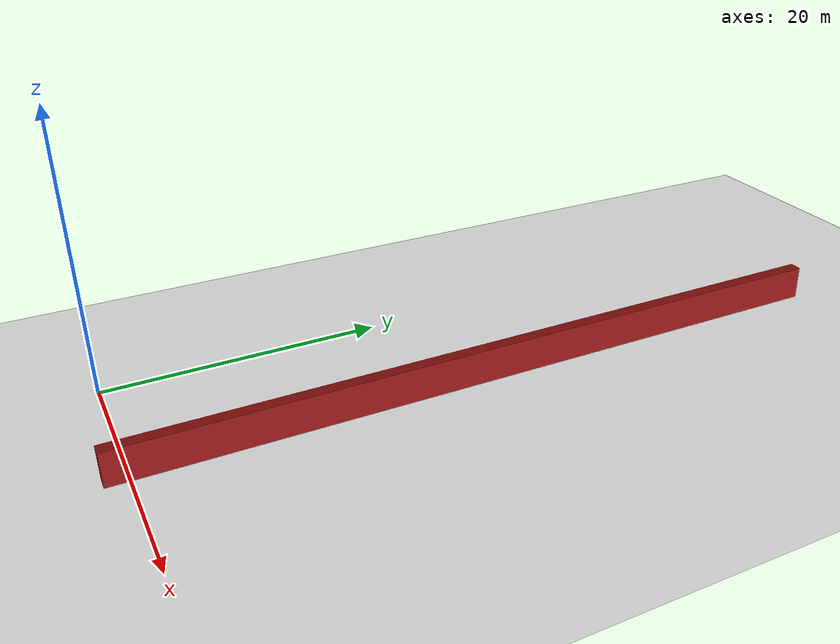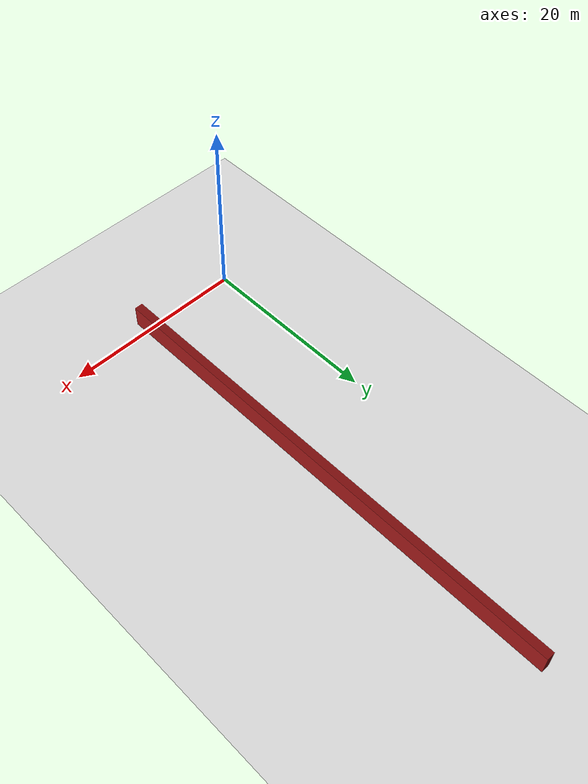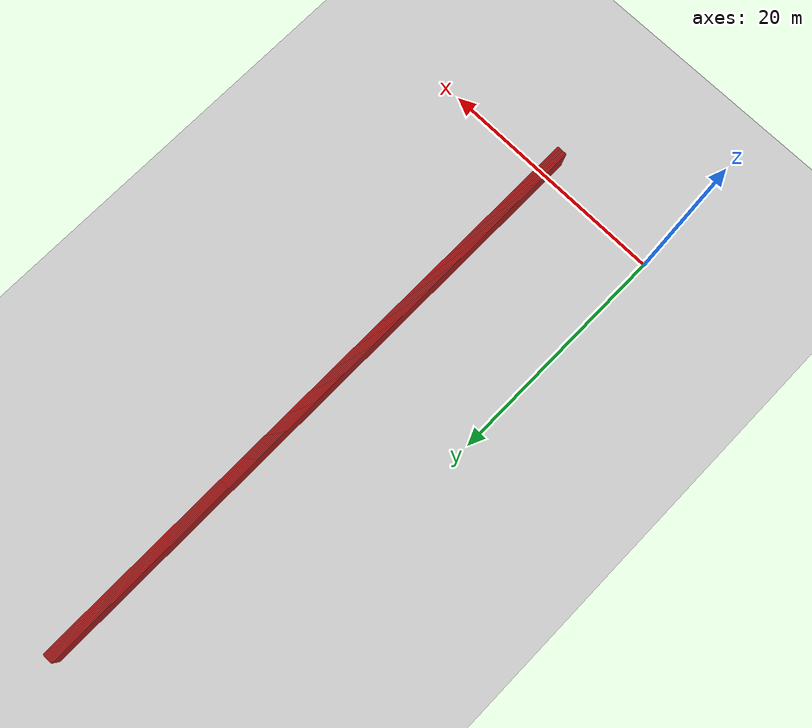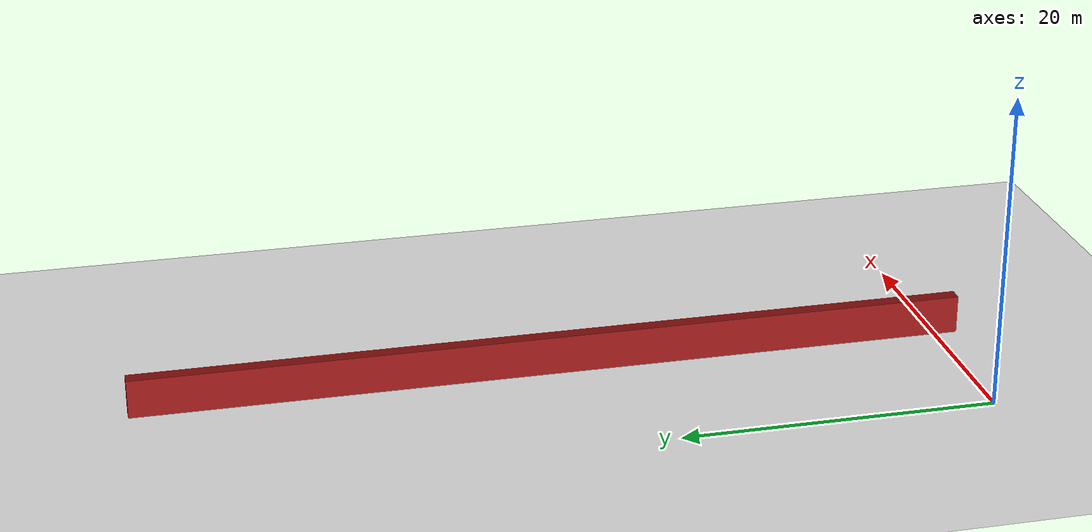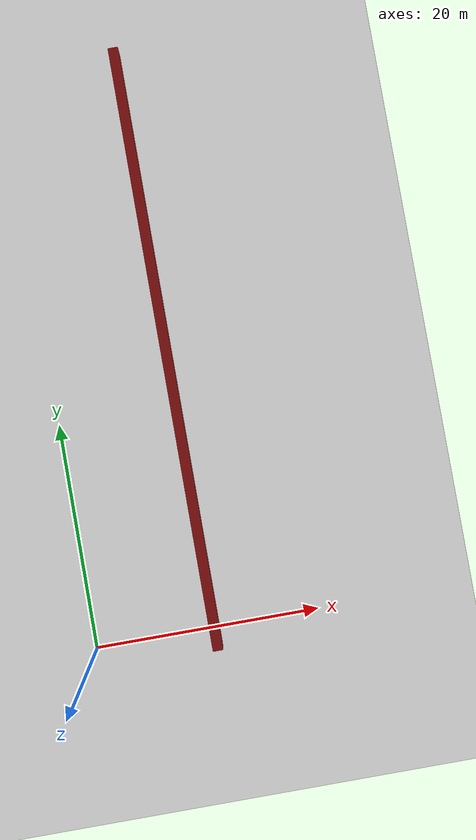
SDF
<sdf version="1.4">
 <world name="1_wall">
  <model name="ground_plane">
   <static>1</static>
   <link name="link">
    <collision name="collision">
     <geometry><plane><normal>0 0 1</normal><size>1000 1000</size></plane></geometry>
     <surface><friction><ode><mu>100</mu><mu2>50</mu2></ode></friction></surface>
    </collision>
    <visual name="visual">
     <cast_shadows>0</cast_shadows>
     <geometry><plane><normal>0 0 1</normal><size>10000 10000</size></plane></geometry>
     <material>
      <script><uri>file://media/materials/scripts/gazebo.material</uri><name>Gazebo/Grey</name></script>
     </material>
    </visual>
    <velocity_decay><linear>0</linear><angular>0</angular></velocity_decay>
   </link>
  </model>
  <model name="Wall_234">
   <static>1</static>
   <link name="Wall_234">
    <collision name="Wall_Collision_234">
     <geometry><box><size>53.65 0.05 2.5</size></box></geometry>
     <pose>0 0 1.25 0 -0 0</pose>
    </collision>
    <visual name="Wall_Visual_234">
     <pose>0 0 1.25 0 -0 0</pose>
     <geometry><box><size>53.65 0.05 2.5</size></box></geometry>
     <material>
      <script><uri>file://media/materials/scripts/gazebo.material</uri><name>Gazebo/Red</name></script>
     </material>
    </visual>
    <velocity_decay><linear>0</linear><angular>0</angular></velocity_decay>
    <pose>10.2 25.3 0 0 0 1.5707963267948966</pose>
   </link>
  </model>
  <model name="Wall_235">
   <static>1</static>
   <link name="Wall_235">
    <collision name="Wall_Collision_235">
     <geometry><box><size>53.65 0.05 2.5</size></box></geometry>
     <pose>0 0 1.25 0 -0 0</pose>
    </collision>
    <visual name="Wall_Visual_235">
     <pose>0 0 1.25 0 -0 0</pose>
     <geometry><box><size>53.65 0.05 2.5</size></box></geometry>
     <material>
      <script><uri>file://media/materials/scripts/gazebo.material</uri><name>Gazebo/Red</name></script>
     </material>
    </visual>
    <velocity_decay><linear>0</linear><angular>0</angular></velocity_decay>
    <pose>10.25 25.3 0 0 0 1.5707963267948966</pose>
   </link>
  </model>
  <model name="Wall_236">
   <static>1</static>
   <link name="Wall_236">
    <collision name="Wall_Collision_236">
     <geometry><box><size>53.65 0.05 2.5</size></box></geometry>
     <pose>0 0 1.25 0 -0 0</pose>
    </collision>
    <visual name="Wall_Visual_236">
     <pose>0 0 1.25 0 -0 0</pose>
     <geometry><box><size>53.65 0.05 2.5</size></box></geometry>
     <material>
      <script><uri>file://media/materials/scripts/gazebo.material</uri><name>Gazebo/Red</name></script>
     </material>
    </visual>
    <velocity_decay><linear>0</linear><angular>0</angular></velocity_decay>
    <pose>10.3 25.3 0 0 0 1.5707963267948966</pose>
   </link>
  </model>
  <model name="Wall_237">
   <static>1</static>
   <link name="Wall_237">
    <collision name="Wall_Collision_237">
     <geometry><box><size>53.65 0.05 2.5</size></box></geometry>
     <pose>0 0 1.25 0 -0 0</pose>
    </collision>
    <visual name="Wall_Visual_237">
     <pose>0 0 1.25 0 -0 0</pose>
     <geometry><box><size>53.65 0.05 2.5</size></box></geometry>
     <material>
      <script><uri>file://media/materials/scripts/gazebo.material</uri><name>Gazebo/Red</name></script>
     </material>
    </visual>
    <velocity_decay><linear>0</linear><angular>0</angular></velocity_decay>
    <pose>10.35 25.3 0 0 0 1.5707963267948966</pose>
   </link>
  </model>
  <model name="Wall_238">
   <static>1</static>
   <link name="Wall_238">
    <collision name="Wall_Collision_238">
     <geometry><box><size>53.65 0.05 2.5</size></box></geometry>
     <pose>0 0 1.25 0 -0 0</pose>
    </collision>
    <visual name="Wall_Visual_238">
     <pose>0 0 1.25 0 -0 0</pose>
     <geometry><box><size>53.65 0.05 2.5</size></box></geometry>
     <material>
      <script><uri>file://media/materials/scripts/gazebo.material</uri><name>Gazebo/Red</name></script>
     </material>
    </visual>
    <velocity_decay><linear>0</linear><angular>0</angular></velocity_decay>
    <pose>10.4 25.3 0 0 0 1.5707963267948966</pose>
   </link>
  </model>
  <model name="Wall_239">
   <static>1</static>
   <link name="Wall_239">
    <collision name="Wall_Collision_239">
     <geometry><box><size>53.65 0.05 2.5</size></box></geometry>
     <pose>0 0 1.25 0 -0 0</pose>
    </collision>
    <visual name="Wall_Visual_239">
     <pose>0 0 1.25 0 -0 0</pose>
     <geometry><box><size>53.65 0.05 2.5</size></box></geometry>
     <material>
      <script><uri>file://media/materials/scripts/gazebo.material</uri><name>Gazebo/Red</name></script>
     </material>
    </visual>
    <velocity_decay><linear>0</linear><angular>0</angular></velocity_decay>
    <pose>10.45 25.3 0 0 0 1.5707963267948966</pose>
   </link>
  </model>
  <model name="Wall_240">
   <static>1</static>
   <link name="Wall_240">
    <collision name="Wall_Collision_240">
     <geometry><box><size>53.65 0.05 2.5</size></box></geometry>
     <pose>0 0 1.25 0 -0 0</pose>
    </collision>
    <visual name="Wall_Visual_240">
     <pose>0 0 1.25 0 -0 0</pose>
     <geometry><box><size>53.65 0.05 2.5</size></box></geometry>
     <material>
      <script><uri>file://media/materials/scripts/gazebo.material</uri><name>Gazebo/Red</name></script>
     </material>
    </visual>
    <velocity_decay><linear>0</linear><angular>0</angular></velocity_decay>
    <pose>10.5 25.3 0 0 0 1.5707963267948966</pose>
   </link>
  </model>
  <model name="Wall_241">
   <static>1</static>
   <link name="Wall_241">
    <collision name="Wall_Collision_241">
     <geometry><box><size>53.65 0.05 2.5</size></box></geometry>
     <pose>0 0 1.25 0 -0 0</pose>
    </collision>
    <visual name="Wall_Visual_241">
     <pose>0 0 1.25 0 -0 0</pose>
     <geometry><box><size>53.65 0.05 2.5</size></box></geometry>
     <material>
      <script><uri>file://media/materials/scripts/gazebo.material</uri><name>Gazebo/Red</name></script>
     </material>
    </visual>
    <velocity_decay><linear>0</linear><angular>0</angular></velocity_decay>
    <pose>10.55 25.3 0 0 0 1.5707963267948966</pose>
   </link>
  </model>
  <model name="Wall_242">
   <static>1</static>
   <link name="Wall_242">
    <collision name="Wall_Collision_242">
     <geometry><box><size>53.65 0.05 2.5</size></box></geometry>
     <pose>0 0 1.25 0 -0 0</pose>
    </collision>
    <visual name="Wall_Visual_242">
     <pose>0 0 1.25 0 -0 0</pose>
     <geometry><box><size>53.65 0.05 2.5</size></box></geometry>
     <material>
      <script><uri>file://media/materials/scripts/gazebo.material</uri><name>Gazebo/Red</name></script>
     </material>
    </visual>
    <velocity_decay><linear>0</linear><angular>0</angular></velocity_decay>
    <pose>10.6 25.3 0 0 0 1.5707963267948966</pose>
   </link>
  </model>
  <model name="Wall_243">
   <static>1</static>
   <link name="Wall_243">
    <collision name="Wall_Collision_243">
     <geometry><box><size>53.65 0.05 2.5</size></box></geometry>
     <pose>0 0 1.25 0 -0 0</pose>
    </collision>
    <visual name="Wall_Visual_243">
     <pose>0 0 1.25 0 -0 0</pose>
     <geometry><box><size>53.65 0.05 2.5</size></box></geometry>
     <material>
      <script><uri>file://media/materials/scripts/gazebo.material</uri><name>Gazebo/Red</name></script>
     </material>
    </visual>
    <velocity_decay><linear>0</linear><angular>0</angular></velocity_decay>
    <pose>10.65 25.3 0 0 0 1.5707963267948966</pose>
   </link>
  </model>
  <model name="Wall_244">
   <static>1</static>
   <link name="Wall_244">
    <collision name="Wall_Collision_244">
     <geometry><box><size>53.65 0.05 2.5</size></box></geometry>
     <pose>0 0 1.25 0 -0 0</pose>
    </collision>
    <visual name="Wall_Visual_244">
     <pose>0 0 1.25 0 -0 0</pose>
     <geometry><box><size>53.65 0.05 2.5</size></box></geometry>
     <material>
      <script><uri>file://media/materials/scripts/gazebo.material</uri><name>Gazebo/Red</name></script>
     </material>
    </visual>
    <velocity_decay><linear>0</linear><angular>0</angular></velocity_decay>
    <pose>10.7 25.3 0 0 0 1.5707963267948966</pose>
   </link>
  </model>
  <model name="Wall_245">
   <static>1</static>
   <link name="Wall_245">
    <collision name="Wall_Collision_245">
     <geometry><box><size>53.65 0.05 2.5</size></box></geometry>
     <pose>0 0 1.25 0 -0 0</pose>
    </collision>
    <visual name="Wall_Visual_245">
     <pose>0 0 1.25 0 -0 0</pose>
     <geometry><box><size>53.65 0.05 2.5</size></box></geometry>
     <material>
      <script><uri>file://media/materials/scripts/gazebo.material</uri><name>Gazebo/Red</name></script>
     </material>
    </visual>
    <velocity_decay><linear>0</linear><angular>0</angular></velocity_decay>
    <pose>10.75 25.3 0 0 0 1.5707963267948966</pose>
   </link>
  </model>
  <model name="Wall_246">
   <static>1</static>
   <link name="Wall_246">
    <collision name="Wall_Collision_246">
     <geometry><box><size>53.65 0.05 2.5</size></box></geometry>
     <pose>0 0 1.25 0 -0 0</pose>
    </collision>
    <visual name="Wall_Visual_246">
     <pose>0 0 1.25 0 -0 0</pose>
     <geometry><box><size>53.65 0.05 2.5</size></box></geometry>
     <material>
      <script><uri>file://media/materials/scripts/gazebo.material</uri><name>Gazebo/Red</name></script>
     </material>
    </visual>
    <velocity_decay><linear>0</linear><angular>0</angular></velocity_decay>
    <pose>10.8 25.3 0 0 0 1.5707963267948966</pose>
   </link>
  </model>
  <model name="Wall_247">
   <static>1</static>
   <link name="Wall_247">
    <collision name="Wall_Collision_247">
     <geometry><box><size>53.65 0.05 2.5</size></box></geometry>
     <pose>0 0 1.25 0 -0 0</pose>
    </collision>
    <visual name="Wall_Visual_247">
     <pose>0 0 1.25 0 -0 0</pose>
     <geometry><box><size>53.65 0.05 2.5</size></box></geometry>
     <material>
      <script><uri>file://media/materials/scripts/gazebo.material</uri><name>Gazebo/Red</name></script>
     </material>
    </visual>
    <velocity_decay><linear>0</linear><angular>0</angular></velocity_decay>
    <pose>10.85 25.3 0 0 0 1.5707963267948966</pose>
   </link>
  </model>
  <model name="Wall_248">
   <static>1</static>
   <link name="Wall_248">
    <collision name="Wall_Collision_248">
     <geometry><box><size>53.65 0.05 2.5</size></box></geometry>
     <pose>0 0 1.25 0 -0 0</pose>
    </collision>
    <visual name="Wall_Visual_248">
     <pose>0 0 1.25 0 -0 0</pose>
     <geometry><box><size>53.65 0.05 2.5</size></box></geometry>
     <material>
      <script><uri>file://media/materials/scripts/gazebo.material</uri><name>Gazebo/Red</name></script>
     </material>
    </visual>
    <velocity_decay><linear>0</linear><angular>0</angular></velocity_decay>
    <pose>10.9 25.3 0 0 0 1.5707963267948966</pose>
   </link>
  </model>
  <model name="Wall_249">
   <static>1</static>
   <link name="Wall_249">
    <collision name="Wall_Collision_249">
     <geometry><box><size>53.65 0.05 2.5</size></box></geometry>
     <pose>0 0 1.25 0 -0 0</pose>
    </collision>
    <visual name="Wall_Visual_249">
     <pose>0 0 1.25 0 -0 0</pose>
     <geometry><box><size>53.65 0.05 2.5</size></box></geometry>
     <material>
      <script><uri>file://media/materials/scripts/gazebo.material</uri><name>Gazebo/Red</name></script>
     </material>
    </visual>
    <velocity_decay><linear>0</linear><angular>0</angular></velocity_decay>
    <pose>10.95 25.3 0 0 0 1.5707963267948966</pose>
   </link>
  </model>
  <model name="Wall_250">
   <static>1</static>
   <link name="Wall_250">
    <collision name="Wall_Collision_250">
     <geometry><box><size>53.65 0.05 2.5</size></box></geometry>
     <pose>0 0 1.25 0 -0 0</pose>
    </collision>
    <visual name="Wall_Visual_250">
     <pose>0 0 1.25 0 -0 0</pose>
     <geometry><box><size>53.65 0.05 2.5</size></box></geometry>
     <material>
      <script><uri>file://media/materials/scripts/gazebo.material</uri><name>Gazebo/Red</name></script>
     </material>
    </visual>
    <velocity_decay><linear>0</linear><angular>0</angular></velocity_decay>
    <pose>11.0 25.3 0 0 0 1.5707963267948966</pose>
   </link>
  </model>
  <model name="Wall_251">
   <static>1</static>
   <link name="Wall_251">
    <collision name="Wall_Collision_251">
     <geometry><box><size>53.65 0.05 2.5</size></box></geometry>
     <pose>0 0 1.25 0 -0 0</pose>
    </collision>
    <visual name="Wall_Visual_251">
     <pose>0 0 1.25 0 -0 0</pose>
     <geometry><box><size>53.65 0.05 2.5</size></box></geometry>
     <material>
      <script><uri>file://media/materials/scripts/gazebo.material</uri><name>Gazebo/Red</name></script>
     </material>
    </visual>
    <velocity_decay><linear>0</linear><angular>0</angular></velocity_decay>
    <pose>11.05 25.3 0 0 0 1.5707963267948966</pose>
   </link>
  </model>
 </world>
</sdf>
